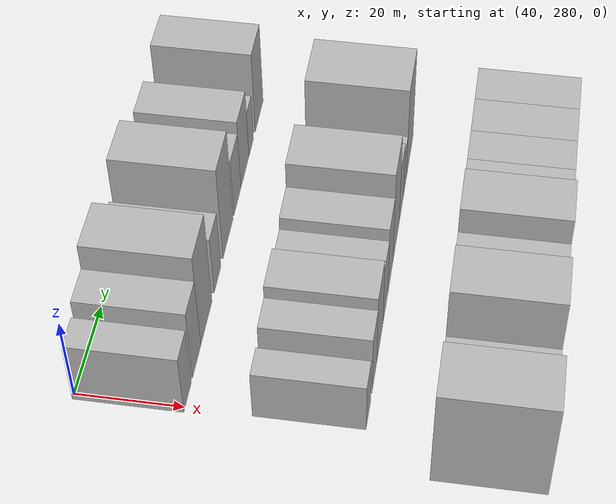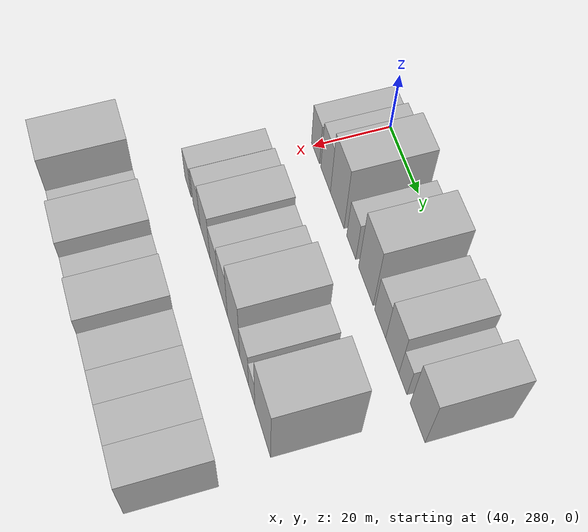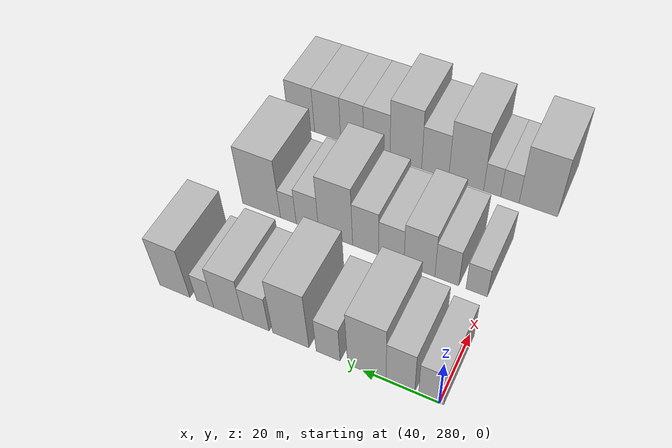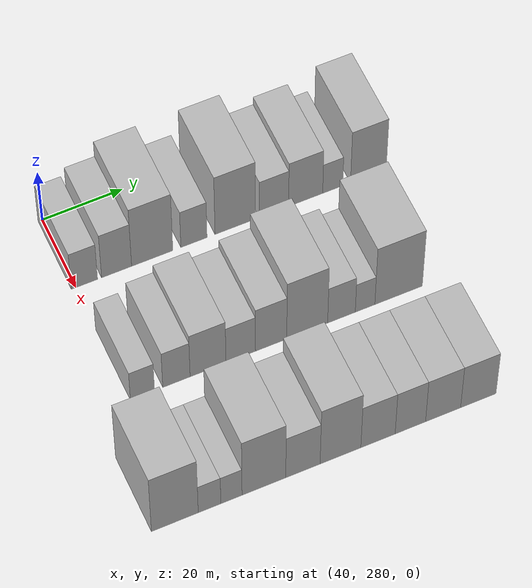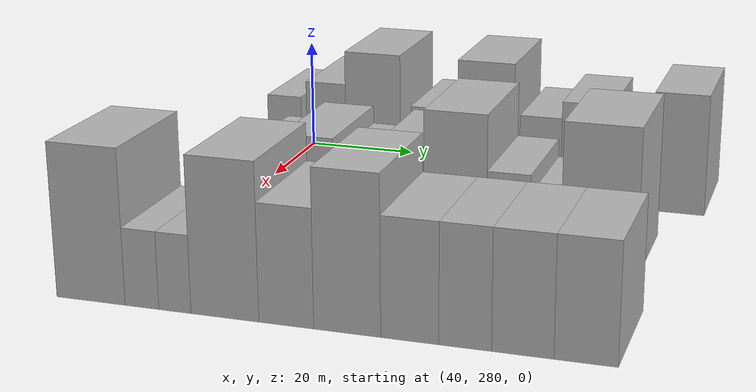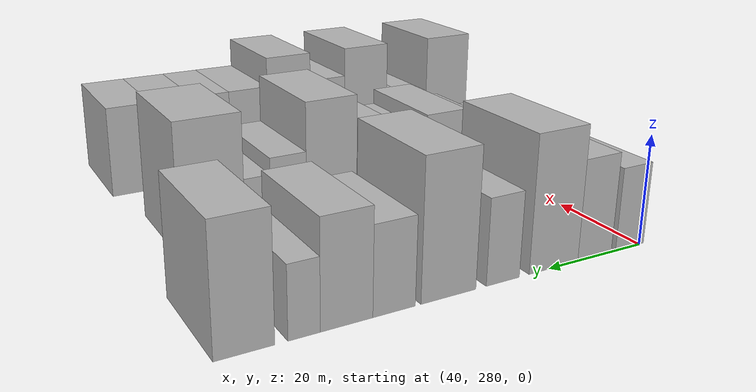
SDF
<sdf version="1.6">
 <world name="default">
  <model name="building_66">
   <static>1</static>
   <pose>50.0000 282.1559 0 0.000000 0.000000 0.000000</pose>
   <link name="link">
    <pose>0 0 7.50 0 0 0</pose>
    <collision name="collision"><geometry><box><size>20.0000 6.4696 15.0000</size></box></geometry></collision>
    <visual name="visual">
     <cast_shadows>0</cast_shadows>
     <geometry><box><size>20.0000 6.4696 15.0000</size></box></geometry>
     <material>
      <script>
       <uri>model://HANNAS_wall/materials/scripts</uri>
       <uri>model://HANNAS_wall/materials/textures</uri>
       <name>vrc/HANNAS_wall</name>
      </script>
     </material>
    </visual>
   </link>
  </model>
  <model name="building_67">
   <static>1</static>
   <pose>50.0000 290.1104 0 0.000000 0.000000 0.000000</pose>
   <link name="link">
    <pose>0 0 9.00 0 0 0</pose>
    <collision name="collision"><geometry><box><size>20.0000 7.4394 18.0000</size></box></geometry></collision>
    <visual name="visual">
     <cast_shadows>0</cast_shadows>
     <geometry><box><size>20.0000 7.4394 18.0000</size></box></geometry>
     <material>
      <script>
       <uri>model://HANNAS_wall/materials/scripts</uri>
       <uri>model://HANNAS_wall/materials/textures</uri>
       <name>vrc/HANNAS_wall</name>
      </script>
     </material>
    </visual>
   </link>
  </model>
  <model name="building_68">
   <static>1</static>
   <pose>50.0000 298.9630 0 0.000000 0.000000 0.000000</pose>
   <link name="link">
    <pose>0 0 12.00 0 0 0</pose>
    <collision name="collision"><geometry><box><size>20.0000 10.2657 24.0000</size></box></geometry></collision>
    <visual name="visual">
     <cast_shadows>0</cast_shadows>
     <geometry><box><size>20.0000 10.2657 24.0000</size></box></geometry>
     <material>
      <script>
       <uri>model://HANNAS_wall/materials/scripts</uri>
       <uri>model://HANNAS_wall/materials/textures</uri>
       <name>vrc/HANNAS_wall</name>
      </script>
     </material>
    </visual>
   </link>
  </model>
  <model name="building_69">
   <static>1</static>
   <pose>50.0000 309.3733 0 0.000000 0.000000 0.000000</pose>
   <link name="link">
    <pose>0 0 7.50 0 0 0</pose>
    <collision name="collision"><geometry><box><size>20.0000 6.5549 15.0000</size></box></geometry></collision>
    <visual name="visual">
     <cast_shadows>0</cast_shadows>
     <geometry><box><size>20.0000 6.5549 15.0000</size></box></geometry>
     <material>
      <script>
       <uri>model://HANNAS_wall/materials/scripts</uri>
       <uri>model://HANNAS_wall/materials/textures</uri>
       <name>vrc/HANNAS_wall</name>
      </script>
     </material>
    </visual>
   </link>
  </model>
  <model name="building_70">
   <static>1</static>
   <pose>50.0000 319.7446 0 0.000000 0.000000 0.000000</pose>
   <link name="link">
    <pose>0 0 12.00 0 0 0</pose>
    <collision name="collision"><geometry><box><size>20.0000 10.1878 24.0000</size></box></geometry></collision>
    <visual name="visual">
     <cast_shadows>0</cast_shadows>
     <geometry><box><size>20.0000 10.1878 24.0000</size></box></geometry>
     <material>
      <script>
       <uri>model://HANNAS_wall/materials/scripts</uri>
       <uri>model://HANNAS_wall/materials/textures</uri>
       <name>vrc/HANNAS_wall</name>
      </script>
     </material>
    </visual>
   </link>
  </model>
  <model name="building_71">
   <static>1</static>
   <pose>50.0000 329.5365 0 0.000000 0.000000 0.000000</pose>
   <link name="link">
    <pose>0 0 7.50 0 0 0</pose>
    <collision name="collision"><geometry><box><size>20.0000 7.3959 15.0000</size></box></geometry></collision>
    <visual name="visual">
     <cast_shadows>0</cast_shadows>
     <geometry><box><size>20.0000 7.3959 15.0000</size></box></geometry>
     <material>
      <script>
       <uri>model://HANNAS_wall/materials/scripts</uri>
       <uri>model://HANNAS_wall/materials/textures</uri>
       <name>vrc/HANNAS_wall</name>
      </script>
     </material>
    </visual>
   </link>
  </model>
  <model name="building_72">
   <static>1</static>
   <pose>50.0000 337.5648 0 0.000000 0.000000 0.000000</pose>
   <link name="link">
    <pose>0 0 9.00 0 0 0</pose>
    <collision name="collision"><geometry><box><size>20.0000 8.6607 18.0000</size></box></geometry></collision>
    <visual name="visual">
     <cast_shadows>0</cast_shadows>
     <geometry><box><size>20.0000 8.6607 18.0000</size></box></geometry>
     <material>
      <script>
       <uri>model://HANNAS_wall/materials/scripts</uri>
       <uri>model://HANNAS_wall/materials/textures</uri>
       <name>vrc/HANNAS_wall</name>
      </script>
     </material>
    </visual>
   </link>
  </model>
  <model name="building_73">
   <static>1</static>
   <pose>50.0000 344.4485 0 0.000000 0.000000 0.000000</pose>
   <link name="link">
    <pose>0 0 6.00 0 0 0</pose>
    <collision name="collision"><geometry><box><size>20.0000 5.1066 12.0000</size></box></geometry></collision>
    <visual name="visual">
     <cast_shadows>0</cast_shadows>
     <geometry><box><size>20.0000 5.1066 12.0000</size></box></geometry>
     <material>
      <script>
       <uri>model://HANNAS_wall/materials/scripts</uri>
       <uri>model://HANNAS_wall/materials/textures</uri>
       <name>vrc/HANNAS_wall</name>
      </script>
     </material>
    </visual>
   </link>
  </model>
  <model name="building_74">
   <static>1</static>
   <pose>50.0000 353.5780 0 0.000000 0.000000 0.000000</pose>
   <link name="link">
    <pose>0 0 10.50 0 0 0</pose>
    <collision name="collision"><geometry><box><size>20.0000 9.1524 21.0000</size></box></geometry></collision>
    <visual name="visual">
     <cast_shadows>0</cast_shadows>
     <geometry><box><size>20.0000 9.1524 21.0000</size></box></geometry>
     <material>
      <script>
       <uri>model://HANNAS_wall/materials/scripts</uri>
       <uri>model://HANNAS_wall/materials/textures</uri>
       <name>vrc/HANNAS_wall</name>
      </script>
     </material>
    </visual>
   </link>
  </model>
  <model name="building_139">
   <static>1</static>
   <pose>82.0000 282.8169 0 0.000000 0.000000 0.000000</pose>
   <link name="link">
    <pose>0 0 6.00 0 0 0</pose>
    <collision name="collision"><geometry><box><size>20.0000 5.8766 12.0000</size></box></geometry></collision>
    <visual name="visual">
     <cast_shadows>0</cast_shadows>
     <geometry><box><size>20.0000 5.8766 12.0000</size></box></geometry>
     <material>
      <script>
       <uri>model://HANNAS_wall/materials/scripts</uri>
       <uri>model://HANNAS_wall/materials/textures</uri>
       <name>vrc/HANNAS_wall</name>
      </script>
     </material>
    </visual>
   </link>
  </model>
  <model name="building_140">
   <static>1</static>
   <pose>82.0000 291.0930 0 0.000000 0.000000 0.000000</pose>
   <link name="link">
    <pose>0 0 7.50 0 0 0</pose>
    <collision name="collision"><geometry><box><size>20.0000 6.6755 15.0000</size></box></geometry></collision>
    <visual name="visual">
     <cast_shadows>0</cast_shadows>
     <geometry><box><size>20.0000 6.6755 15.0000</size></box></geometry>
     <material>
      <script>
       <uri>model://HANNAS_wall/materials/scripts</uri>
       <uri>model://HANNAS_wall/materials/textures</uri>
       <name>vrc/HANNAS_wall</name>
      </script>
     </material>
    </visual>
   </link>
  </model>
  <model name="building_141">
   <static>1</static>
   <pose>82.0000 298.8240 0 0.000000 0.000000 0.000000</pose>
   <link name="link">
    <pose>0 0 9.00 0 0 0</pose>
    <collision name="collision"><geometry><box><size>20.0000 8.7866 18.0000</size></box></geometry></collision>
    <visual name="visual">
     <cast_shadows>0</cast_shadows>
     <geometry><box><size>20.0000 8.7866 18.0000</size></box></geometry>
     <material>
      <script>
       <uri>model://HANNAS_wall/materials/scripts</uri>
       <uri>model://HANNAS_wall/materials/textures</uri>
       <name>vrc/HANNAS_wall</name>
      </script>
     </material>
    </visual>
   </link>
  </model>
  <model name="building_142">
   <static>1</static>
   <pose>82.0000 306.8493 0 0.000000 0.000000 0.000000</pose>
   <link name="link">
    <pose>0 0 7.50 0 0 0</pose>
    <collision name="collision"><geometry><box><size>20.0000 7.2640 15.0000</size></box></geometry></collision>
    <visual name="visual">
     <cast_shadows>0</cast_shadows>
     <geometry><box><size>20.0000 7.2640 15.0000</size></box></geometry>
     <material>
      <script>
       <uri>model://HANNAS_wall/materials/scripts</uri>
       <uri>model://HANNAS_wall/materials/textures</uri>
       <name>vrc/HANNAS_wall</name>
      </script>
     </material>
    </visual>
   </link>
  </model>
  <model name="building_143">
   <static>1</static>
   <pose>82.0000 314.3431 0 0.000000 0.000000 0.000000</pose>
   <link name="link">
    <pose>0 0 9.00 0 0 0</pose>
    <collision name="collision"><geometry><box><size>20.0000 7.7236 18.0000</size></box></geometry></collision>
    <visual name="visual">
     <cast_shadows>0</cast_shadows>
     <geometry><box><size>20.0000 7.7236 18.0000</size></box></geometry>
     <material>
      <script>
       <uri>model://HANNAS_wall/materials/scripts</uri>
       <uri>model://HANNAS_wall/materials/textures</uri>
       <name>vrc/HANNAS_wall</name>
      </script>
     </material>
    </visual>
   </link>
  </model>
  <model name="building_144">
   <static>1</static>
   <pose>82.0000 323.2901 0 0.000000 0.000000 0.000000</pose>
   <link name="link">
    <pose>0 0 12.00 0 0 0</pose>
    <collision name="collision"><geometry><box><size>20.0000 10.1705 24.0000</size></box></geometry></collision>
    <visual name="visual">
     <cast_shadows>0</cast_shadows>
     <geometry><box><size>20.0000 10.1705 24.0000</size></box></geometry>
     <material>
      <script>
       <uri>model://HANNAS_wall/materials/scripts</uri>
       <uri>model://HANNAS_wall/materials/textures</uri>
       <name>vrc/HANNAS_wall</name>
      </script>
     </material>
    </visual>
   </link>
  </model>
  <model name="building_145">
   <static>1</static>
   <pose>82.0000 331.8244 0 0.000000 0.000000 0.000000</pose>
   <link name="link">
    <pose>0 0 7.50 0 0 0</pose>
    <collision name="collision"><geometry><box><size>20.0000 6.8981 15.0000</size></box></geometry></collision>
    <visual name="visual">
     <cast_shadows>0</cast_shadows>
     <geometry><box><size>20.0000 6.8981 15.0000</size></box></geometry>
     <material>
      <script>
       <uri>model://HANNAS_wall/materials/scripts</uri>
       <uri>model://HANNAS_wall/materials/textures</uri>
       <name>vrc/HANNAS_wall</name>
      </script>
     </material>
    </visual>
   </link>
  </model>
  <model name="building_146">
   <static>1</static>
   <pose>82.0000 337.7239 0 0.000000 0.000000 0.000000</pose>
   <link name="link">
    <pose>0 0 6.00 0 0 0</pose>
    <collision name="collision"><geometry><box><size>20.0000 4.9009 12.0000</size></box></geometry></collision>
    <visual name="visual">
     <cast_shadows>0</cast_shadows>
     <geometry><box><size>20.0000 4.9009 12.0000</size></box></geometry>
     <material>
      <script>
       <uri>model://HANNAS_wall/materials/scripts</uri>
       <uri>model://HANNAS_wall/materials/textures</uri>
       <name>vrc/HANNAS_wall</name>
      </script>
     </material>
    </visual>
   </link>
  </model>
  <model name="building_147">
   <static>1</static>
   <pose>82.0000 346.1405 0 0.000000 0.000000 0.000000</pose>
   <link name="link">
    <pose>0 0 12.00 0 0 0</pose>
    <collision name="collision"><geometry><box><size>20.0000 11.9322 24.0000</size></box></geometry></collision>
    <visual name="visual">
     <cast_shadows>0</cast_shadows>
     <geometry><box><size>20.0000 11.9322 24.0000</size></box></geometry>
     <material>
      <script>
       <uri>model://HANNAS_wall/materials/scripts</uri>
       <uri>model://HANNAS_wall/materials/textures</uri>
       <name>vrc/HANNAS_wall</name>
      </script>
     </material>
    </visual>
   </link>
  </model>
  <model name="building_214">
   <static>1</static>
   <pose>114.0000 276.8120 0 0.000000 0.000000 0.000000</pose>
   <link name="link">
    <pose>0 0 12.00 0 0 0</pose>
    <collision name="collision"><geometry><box><size>20.0000 11.1604 24.0000</size></box></geometry></collision>
    <visual name="visual">
     <cast_shadows>0</cast_shadows>
     <geometry><box><size>20.0000 11.1604 24.0000</size></box></geometry>
     <material>
      <script>
       <uri>model://HANNAS_wall/materials/scripts</uri>
       <uri>model://HANNAS_wall/materials/textures</uri>
       <name>vrc/HANNAS_wall</name>
      </script>
     </material>
    </visual>
   </link>
  </model>
  <model name="building_215">
   <static>1</static>
   <pose>114.0000 285.0933 0 0.000000 0.000000 0.000000</pose>
   <link name="link">
    <pose>0 0 6.00 0 0 0</pose>
    <collision name="collision"><geometry><box><size>20.0000 5.4021 12.0000</size></box></geometry></collision>
    <visual name="visual">
     <cast_shadows>0</cast_shadows>
     <geometry><box><size>20.0000 5.4021 12.0000</size></box></geometry>
     <material>
      <script>
       <uri>model://HANNAS_wall/materials/scripts</uri>
       <uri>model://HANNAS_wall/materials/textures</uri>
       <name>vrc/HANNAS_wall</name>
      </script>
     </material>
    </visual>
   </link>
  </model>
  <model name="building_216">
   <static>1</static>
   <pose>114.0000 290.3398 0 0.000000 0.000000 0.000000</pose>
   <link name="link">
    <pose>0 0 6.00 0 0 0</pose>
    <collision name="collision"><geometry><box><size>20.0000 5.0908 12.0000</size></box></geometry></collision>
    <visual name="visual">
     <cast_shadows>0</cast_shadows>
     <geometry><box><size>20.0000 5.0908 12.0000</size></box></geometry>
     <material>
      <script>
       <uri>model://HANNAS_wall/materials/scripts</uri>
       <uri>model://HANNAS_wall/materials/textures</uri>
       <name>vrc/HANNAS_wall</name>
      </script>
     </material>
    </visual>
   </link>
  </model>
  <model name="building_217">
   <static>1</static>
   <pose>114.0000 298.1551 0 0.000000 0.000000 0.000000</pose>
   <link name="link">
    <pose>0 0 12.00 0 0 0</pose>
    <collision name="collision"><geometry><box><size>20.0000 10.5400 24.0000</size></box></geometry></collision>
    <visual name="visual">
     <cast_shadows>0</cast_shadows>
     <geometry><box><size>20.0000 10.5400 24.0000</size></box></geometry>
     <material>
      <script>
       <uri>model://HANNAS_wall/materials/scripts</uri>
       <uri>model://HANNAS_wall/materials/textures</uri>
       <name>vrc/HANNAS_wall</name>
      </script>
     </material>
    </visual>
   </link>
  </model>
  <model name="building_218">
   <static>1</static>
   <pose>114.0000 307.5886 0 0.000000 0.000000 0.000000</pose>
   <link name="link">
    <pose>0 0 9.00 0 0 0</pose>
    <collision name="collision"><geometry><box><size>20.0000 8.3268 18.0000</size></box></geometry></collision>
    <visual name="visual">
     <cast_shadows>0</cast_shadows>
     <geometry><box><size>20.0000 8.3268 18.0000</size></box></geometry>
     <material>
      <script>
       <uri>model://HANNAS_wall/materials/scripts</uri>
       <uri>model://HANNAS_wall/materials/textures</uri>
       <name>vrc/HANNAS_wall</name>
      </script>
     </material>
    </visual>
   </link>
  </model>
  <model name="building_219">
   <static>1</static>
   <pose>114.0000 316.7141 0 0.000000 0.000000 0.000000</pose>
   <link name="link">
    <pose>0 0 12.00 0 0 0</pose>
    <collision name="collision"><geometry><box><size>20.0000 9.9242 24.0000</size></box></geometry></collision>
    <visual name="visual">
     <cast_shadows>0</cast_shadows>
     <geometry><box><size>20.0000 9.9242 24.0000</size></box></geometry>
     <material>
      <script>
       <uri>model://HANNAS_wall/materials/scripts</uri>
       <uri>model://HANNAS_wall/materials/textures</uri>
       <name>vrc/HANNAS_wall</name>
      </script>
     </material>
    </visual>
   </link>
  </model>
  <model name="building_220">
   <static>1</static>
   <pose>114.0000 325.8768 0 0.000000 0.000000 0.000000</pose>
   <link name="link">
    <pose>0 0 9.00 0 0 0</pose>
    <collision name="collision"><geometry><box><size>20.0000 8.4014 18.0000</size></box></geometry></collision>
    <visual name="visual">
     <cast_shadows>0</cast_shadows>
     <geometry><box><size>20.0000 8.4014 18.0000</size></box></geometry>
     <material>
      <script>
       <uri>model://HANNAS_wall/materials/scripts</uri>
       <uri>model://HANNAS_wall/materials/textures</uri>
       <name>vrc/HANNAS_wall</name>
      </script>
     </material>
    </visual>
   </link>
  </model>
  <model name="building_221">
   <static>1</static>
   <pose>114.0000 333.8199 0 0.000000 0.000000 0.000000</pose>
   <link name="link">
    <pose>0 0 9.00 0 0 0</pose>
    <collision name="collision"><geometry><box><size>20.0000 7.4847 18.0000</size></box></geometry></collision>
    <visual name="visual">
     <cast_shadows>0</cast_shadows>
     <geometry><box><size>20.0000 7.4847 18.0000</size></box></geometry>
     <material>
      <script>
       <uri>model://HANNAS_wall/materials/scripts</uri>
       <uri>model://HANNAS_wall/materials/textures</uri>
       <name>vrc/HANNAS_wall</name>
      </script>
     </material>
    </visual>
   </link>
  </model>
  <model name="building_222">
   <static>1</static>
   <pose>114.0000 341.8952 0 0.000000 0.000000 0.000000</pose>
   <link name="link">
    <pose>0 0 9.00 0 0 0</pose>
    <collision name="collision"><geometry><box><size>20.0000 8.6660 18.0000</size></box></geometry></collision>
    <visual name="visual">
     <cast_shadows>0</cast_shadows>
     <geometry><box><size>20.0000 8.6660 18.0000</size></box></geometry>
     <material>
      <script>
       <uri>model://HANNAS_wall/materials/scripts</uri>
       <uri>model://HANNAS_wall/materials/textures</uri>
       <name>vrc/HANNAS_wall</name>
      </script>
     </material>
    </visual>
   </link>
  </model>
  <model name="building_223">
   <static>1</static>
   <pose>114.0000 350.6202 0 0.000000 0.000000 0.000000</pose>
   <link name="link">
    <pose>0 0 9.00 0 0 0</pose>
    <collision name="collision"><geometry><box><size>20.0000 8.7841 18.0000</size></box></geometry></collision>
    <visual name="visual">
     <cast_shadows>0</cast_shadows>
     <geometry><box><size>20.0000 8.7841 18.0000</size></box></geometry>
     <material>
      <script>
       <uri>model://HANNAS_wall/materials/scripts</uri>
       <uri>model://HANNAS_wall/materials/textures</uri>
       <name>vrc/HANNAS_wall</name>
      </script>
     </material>
    </visual>
   </link>
  </model>
 </world>
</sdf>
